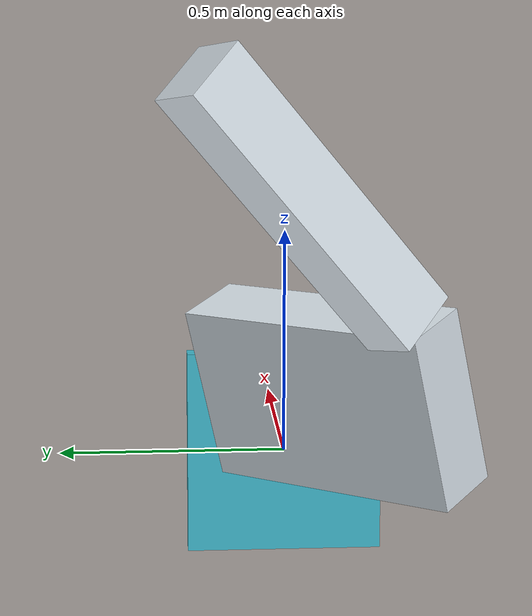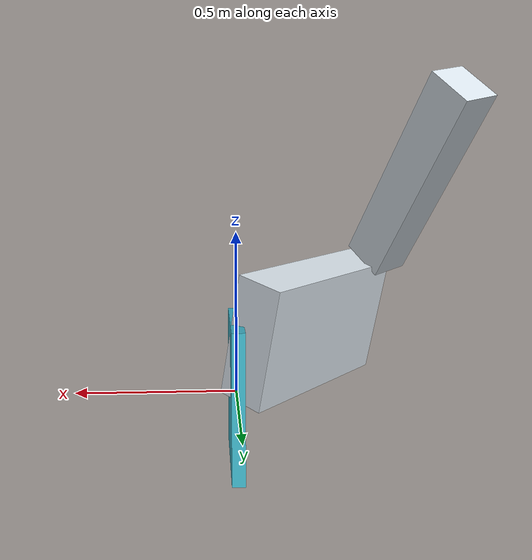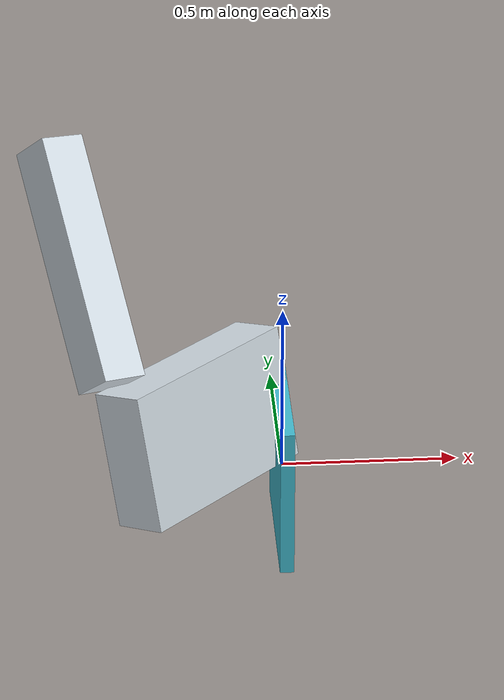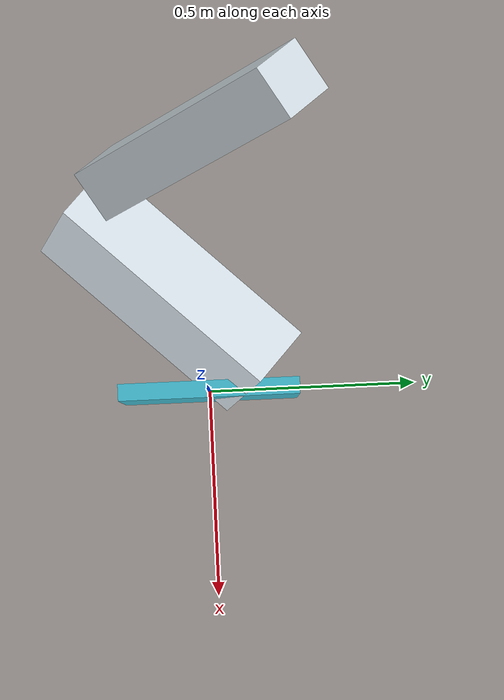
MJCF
<mujoco model="criatura">
  <compiler angle="degree" autolimits="true"/>
  <option timestep="0.002083" gravity="0 0 0" integrator="implicitfast"/>
  <default>
    <geom type="box" density="300.0" rgba="0.85 0.89 0.92 1"/>
    <joint type="hinge"/>
    <motor ctrlrange="-1 1"/>
  </default>
  <worldbody>
    <body name="p0_n0" pos="0.00000 0.00000 0.00000" quat="1.000000 0.000000 0.000000 0.000000">
      <freejoint name="raiz"/>
      <geom name="g_p0_n0" size="0.02022 0.21612 0.22778" rgba="0.25 0.72 0.8 1"/>
      <body name="p1_n2" pos="-0.23800 -0.08720 0.19438" quat="0.023097 -0.398312 0.908128 -0.126953">
        <joint name="p1_n2_j0" axis="0.0000 -1.0000 0.0000" pos="-0.31950 0 0" range="-56.49 56.49" damping="3.0142"/>
        <joint name="p1_n2_j1" axis="0.0000 0.0000 1.0000" pos="-0.31950 0 0" range="-56.49 56.49" damping="3.0142"/>
        <geom name="g_p1_n2" size="0.29950 0.07771 0.19393"/>
        <body name="p2_n4" pos="0.17725 0.16996 -0.52054" quat="0.485277 -0.371504 0.399021 0.683574">
          <joint name="p2_n4_j0" axis="0.0000 0.0000 1.0000" pos="-0.36486 0 0" range="-64.96 64.96" damping="0.9401"/>
          <joint name="p2_n4_j1" axis="1.0000 0.0000 0.0000" pos="-0.36486 0 0" range="-64.96 64.96" damping="0.9401"/>
          <geom name="g_p2_n4" size="0.34486 0.06472 0.07263"/>
        </body>
      </body>
    </body>
  </worldbody>
  <actuator>
    <motor name="m_p1_n2_j0" joint="p1_n2_j0" gear="-60.2832"/>
    <motor name="m_p1_n2_j1" joint="p1_n2_j1" gear="-60.2832"/>
    <motor name="m_p2_n4_j0" joint="p2_n4_j0" gear="-18.8014"/>
    <motor name="m_p2_n4_j1" joint="p2_n4_j1" gear="-18.8014"/>
  </actuator>
</mujoco>
